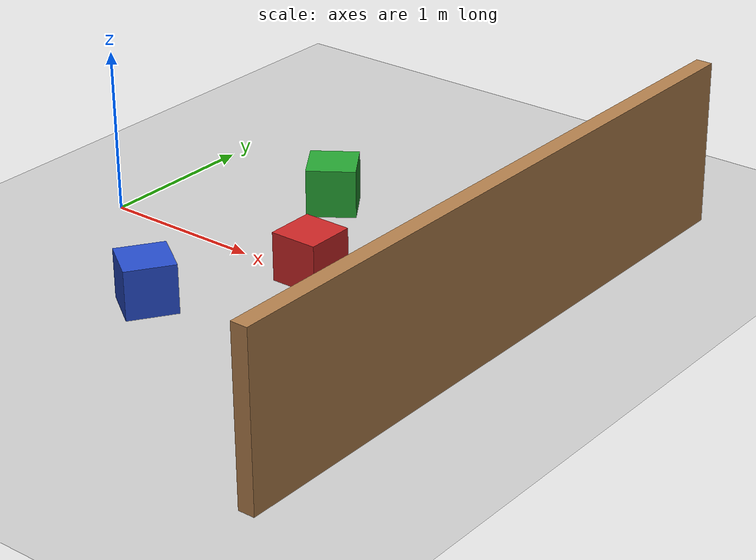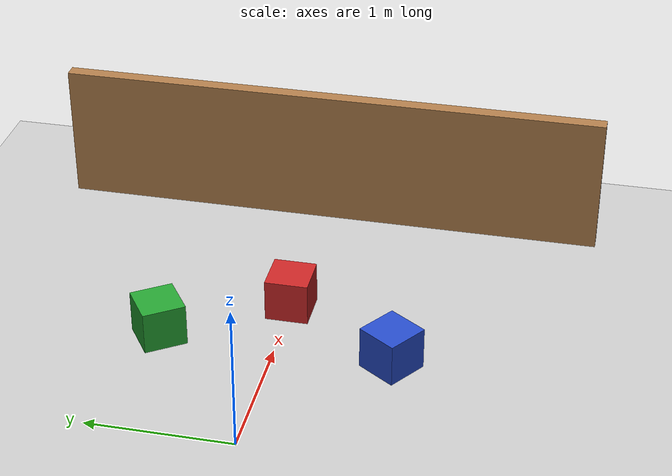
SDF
<?xml version="1.0"?>
<!-- D3→D5: 最小测试世界。D5 加了 3 个前方障碍物 + 一堵侧墙，用于验证激光/相机能"看见"。
     物理参数：1kHz 步长、real_time_factor=1。WSL2 下 RTF 常 <1，属环境限制不影响功能验收。 -->
<sdf version="1.6">
  <world name="mybot_world">

    <include><uri>model://ground_plane</uri></include>
    <include><uri>model://sun</uri></include>

    <physics type="ode">
      <real_time_update_rate>1000.0</real_time_update_rate>
      <max_step_size>0.001</max_step_size>
      <real_time_factor>1</real_time_factor>
    </physics>

    <plugin name="gazebo_ros_state" filename="libgazebo_ros_state.so">
      <ros><namespace>/gazebo</namespace></ros>
    </plugin>
    <plugin name="gazebo_ros_properties" filename="libgazebo_ros_properties.so">
      <ros><namespace>/gazebo</namespace></ros>
    </plugin>

    <!-- ============ D5 障碍物（供激光/相机可视化验证） ============ -->
    <model name="box_ahead">
      <static>true</static>
      <pose>1.5 0 0.15 0 0 0</pose>
      <link name="link">
        <collision name="c"><geometry><box><size>0.3 0.3 0.3</size></box></geometry></collision>
        <visual name="v"><geometry><box><size>0.3 0.3 0.3</size></box></geometry>
          <material><script><uri>file://media/materials/scripts/gazebo.material</uri><name>Gazebo/Red</name></script></material>
        </visual>
      </link>
    </model>

    <model name="box_left">
      <static>true</static>
      <pose>1.0 0.8 0.15 0 0 0.6</pose>
      <link name="link">
        <collision name="c"><geometry><box><size>0.3 0.3 0.3</size></box></geometry></collision>
        <visual name="v"><geometry><box><size>0.3 0.3 0.3</size></box></geometry>
          <material><script><uri>file://media/materials/scripts/gazebo.material</uri><name>Gazebo/Green</name></script></material>
        </visual>
      </link>
    </model>

    <model name="box_right">
      <static>true</static>
      <pose>1.0 -0.8 0.15 0 0 -0.6</pose>
      <link name="link">
        <collision name="c"><geometry><box><size>0.3 0.3 0.3</size></box></geometry></collision>
        <visual name="v"><geometry><box><size>0.3 0.3 0.3</size></box></geometry>
          <material><script><uri>file://media/materials/scripts/gazebo.material</uri><name>Gazebo/Blue</name></script></material>
        </visual>
      </link>
    </model>

    <model name="wall_front">
      <static>true</static>
      <pose>2.8 0 0.5 0 0 0</pose>
      <link name="link">
        <collision name="c"><geometry><box><size>0.1 4.0 1.0</size></box></geometry></collision>
        <visual name="v"><geometry><box><size>0.1 4.0 1.0</size></box></geometry>
          <material><script><uri>file://media/materials/scripts/gazebo.material</uri><name>Gazebo/Wood</name></script></material>
        </visual>
      </link>
    </model>

  </world>
</sdf>
